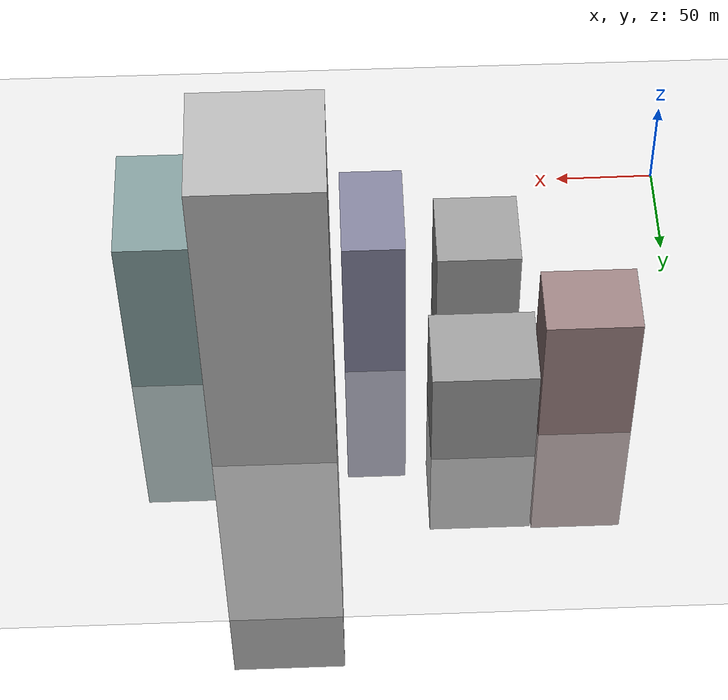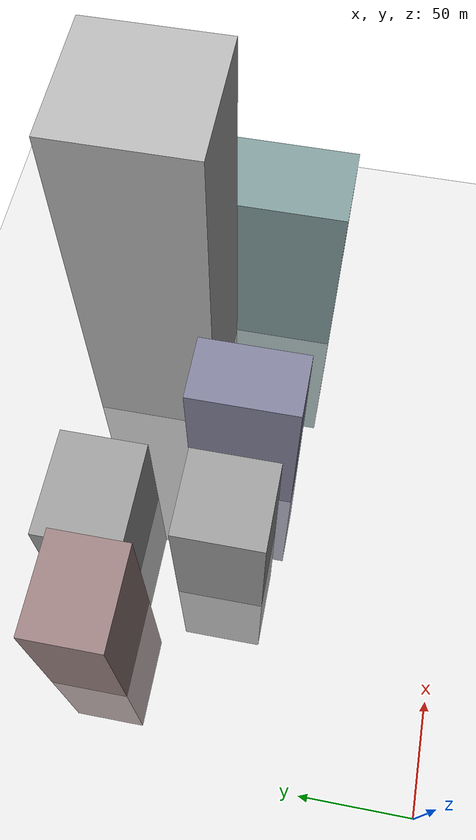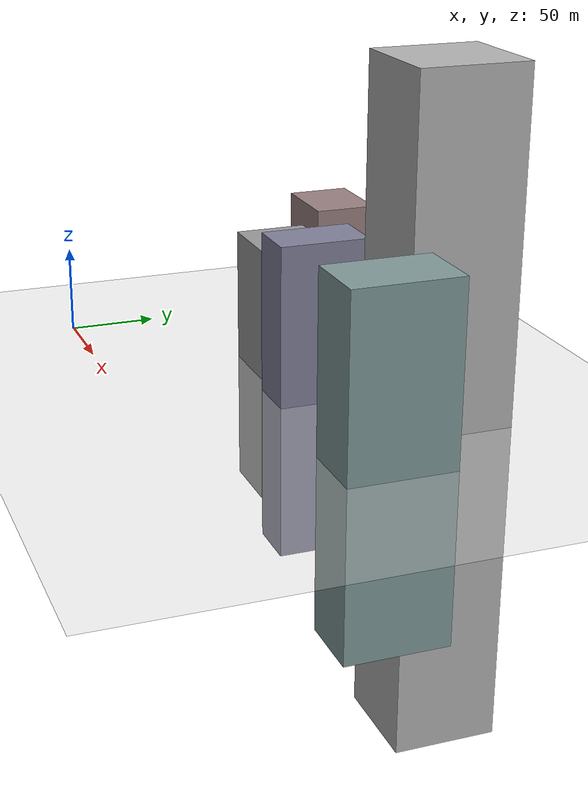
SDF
<?xml version="1.0"?>
<sdf version="1.6">
  <world name="nyc_midtown">

    <!-- Physics -->
    <physics name="default_physics" default="0" type="ode">
      <max_step_size>0.001</max_step_size>
      <real_time_factor>1</real_time_factor>
      <real_time_update_rate>1000</real_time_update_rate>
    </physics>

    <!-- Scene -->
    <scene>
      <ambient>0.4 0.4 0.4 1</ambient>
      <background>0.7 0.7 0.7 1</background>
      <shadows>1</shadows>
    </scene>

    <!-- Sun -->
    <include>
      <uri>model://sun</uri>
    </include>

    <!-- Ground Plane -->
    <include>
      <uri>model://ground_plane</uri>
      <pose>0 0 0 0 0 0</pose>
    </include>

    <!-- NYC Buildings Placeholder -->
    <!-- This will be replaced with actual NYC 3D building models -->

    <!-- Empire State Building Placeholder -->
    <model name="empire_state_building">
      <static>true</static>
      <pose>200 150 0 0 0 0</pose>
      <link name="link">
        <collision name="collision">
          <geometry>
            <box>
              <size>60 60 380</size>
            </box>
          </geometry>
        </collision>
        <visual name="visual">
          <geometry>
            <box>
              <size>60 60 380</size>
            </box>
          </geometry>
          <material>
            <ambient>0.5 0.5 0.5 1</ambient>
            <diffuse>0.7 0.7 0.7 1</diffuse>
          </material>
        </visual>
      </link>
    </model>

    <!-- Times Square Area Placeholder -->
    <model name="times_square_building_1">
      <static>true</static>
      <pose>100 100 0 0 0 0</pose>
      <link name="link">
        <collision name="collision">
          <geometry>
            <box>
              <size>40 40 150</size>
            </box>
          </geometry>
        </collision>
        <visual name="visual">
          <geometry>
            <box>
              <size>40 40 150</size>
            </box>
          </geometry>
          <material>
            <ambient>0.4 0.4 0.4 1</ambient>
            <diffuse>0.6 0.6 0.6 1</diffuse>
          </material>
        </visual>
      </link>
    </model>

    <model name="times_square_building_2">
      <static>true</static>
      <pose>100 160 0 0 0 0</pose>
      <link name="link">
        <collision name="collision">
          <geometry>
            <box>
              <size>50 40 120</size>
            </box>
          </geometry>
        </collision>
        <visual name="visual">
          <geometry>
            <box>
              <size>50 40 120</size>
            </box>
          </geometry>
          <material>
            <ambient>0.4 0.4 0.4 1</ambient>
            <diffuse>0.6 0.6 0.6 1</diffuse>
          </material>
        </visual>
      </link>
    </model>

    <!-- Additional Midtown Buildings -->
    <model name="building_3">
      <static>true</static>
      <pose>150 100 0 0 0 0</pose>
      <link name="link">
        <collision name="collision">
          <geometry>
            <box>
              <size>30 50 180</size>
            </box>
          </geometry>
        </collision>
        <visual name="visual">
          <geometry>
            <box>
              <size>30 50 180</size>
            </box>
          </geometry>
          <material>
            <ambient>0.3 0.3 0.4 1</ambient>
            <diffuse>0.5 0.5 0.6 1</diffuse>
          </material>
        </visual>
      </link>
    </model>

    <model name="building_4">
      <static>true</static>
      <pose>50 150 0 0 0 0</pose>
      <link name="link">
        <collision name="collision">
          <geometry>
            <box>
              <size>45 35 160</size>
            </box>
          </geometry>
        </collision>
        <visual name="visual">
          <geometry>
            <box>
              <size>45 35 160</size>
            </box>
          </geometry>
          <material>
            <ambient>0.4 0.3 0.3 1</ambient>
            <diffuse>0.6 0.5 0.5 1</diffuse>
          </material>
        </visual>
      </link>
    </model>

    <model name="building_5">
      <static>true</static>
      <pose>250 100 0 0 0 0</pose>
      <link name="link">
        <collision name="collision">
          <geometry>
            <box>
              <size>40 60 200</size>
            </box>
          </geometry>
        </collision>
        <visual name="visual">
          <geometry>
            <box>
              <size>40 60 200</size>
            </box>
          </geometry>
          <material>
            <ambient>0.3 0.4 0.4 1</ambient>
            <diffuse>0.5 0.6 0.6 1</diffuse>
          </material>
        </visual>
      </link>
    </model>

    <!-- Plugin for real-time factor control -->
    <plugin name="gazebo_ros_state" filename="libgazebo_ros_state.so">
      <ros>
        <namespace>/gazebo</namespace>
      </ros>
      <update_rate>1.0</update_rate>
    </plugin>

  </world>
</sdf>
